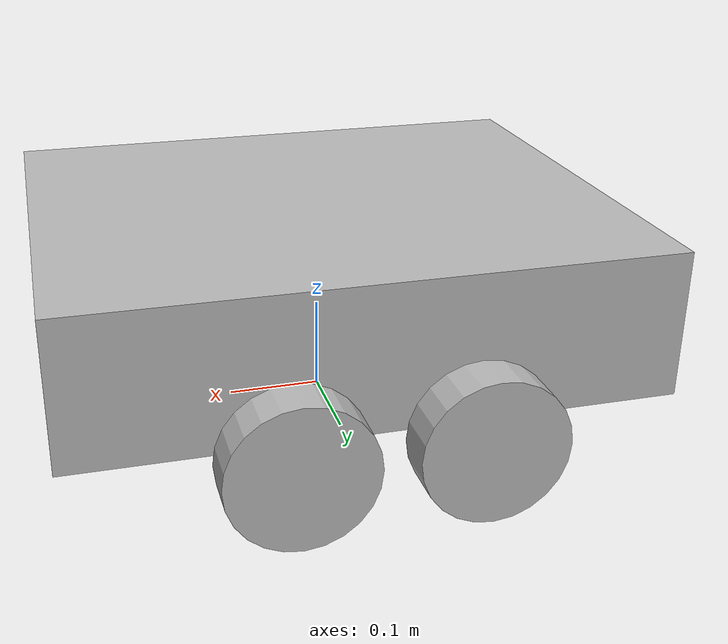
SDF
<?xml version="1.0" ?>
<sdf version="1.6">

<model name="kobra_chassis">
    <link name="chassis">
        <!-- Offset the base by slightly more then half the height of the wheel -->
        <pose>0 0 0.15 0 0 0</pose>
	<inertial>
        <mass>9.5</mass>
	<!-- matrix of inertias of a solid cuboid with mass m, width w,
	     height h, depth d is:
		|m(h^2+d^2)/12		0		0    |
		|	0	m(w^2+d^2)/12		0    |
		|	0		0	m(w^2+h^2)/12|
	-->
        <inertia>
          <ixx>0.21179</ixx>
          <ixy>0.0</ixy>
          <ixz>0.0</ixz>
          <iyy>0.3</iyy>
          <iyz>0.0</iyz>
          <izz>0.478978</izz>
        </inertia>
      </inertial>
        <collision name="collision">
            <geometry>
            <box>
                <!-- Dimensions provided by Nuzoo Robotics -->
                <size>0.6 0.495 0.15</size>
            </box>
            </geometry>
        </collision>
        <visual name="visual">
            <geometry>
            <box>
                <!-- Dimensions provided by Nuzoo Robotics -->
                <size>0.6 0.495 0.15</size>
            </box>
            </geometry>
        </visual>
    </link>

    <link name="right_front_wheel">
        <!-- x y z roll pitch yaw
        roll 90°=1.5707 rad
        -->
        <pose>0.09 -0.2825 0.0725 1.5707 0 0</pose>
	<inertial>
        <mass>1</mass>
	<!-- matrix of inertias of a solid cylinider with mass m,
	     radius r, height h is:
		|m(3*r^2+h^2)/12	0	   0    |
		|	0	m(3*r^2+h^2)/12	   0    |
		|	0		0	m*r^2/2 |
	-->
        <inertia>
          <ixx>0.00148</ixx>
          <ixy>0.0</ixy>
          <ixz>0.0</ixz>
          <iyy>0.00148</iyy>
          <iyz>0.0</iyz>
          <izz>0.002628</izz>
        </inertia>
      </inertial>
        <collision name="collision">
            <geometry>
            <cylinder>
                <radius>0.0725</radius>
                <length>0.045</length>
            </cylinder>
            </geometry>
        </collision>
        <visual name="visual">
            <geometry>
            <cylinder>
                <radius>0.0725</radius>
                <length>0.045</length>
            </cylinder>
            </geometry>
        </visual>
    </link>

    <link name="left_front_wheel">
        <pose>0.09 0.2825 0.0725 1.5707 0 0</pose>
	<inertial>
        <mass>1</mass>
        <inertia>
          <ixx>0.00148</ixx>
          <ixy>0.0</ixy>
          <ixz>0.0</ixz>
          <iyy>0.00148</iyy>
          <iyz>0.0</iyz>
          <izz>0.002628</izz>
        </inertia>
      </inertial>
        <collision name="collision">
            <geometry>
            <cylinder>
                <radius>0.0725</radius>
                <length>0.045</length>
            </cylinder>
            </geometry>
        </collision>
        <visual name="visual">
            <geometry>
            <cylinder>
                <radius>0.0725</radius>
                <length>0.045</length>
            </cylinder>
            </geometry>
        </visual>
    </link>

    <link name="right_rear_wheel">
        <pose>-0.09 -0.2825 0.0725 1.5707 0 0</pose>
	<inertial>
        <mass>1</mass>
        <inertia>
          <ixx>0.00148</ixx>
          <ixy>0.0</ixy>
          <ixz>0.0</ixz>
          <iyy>0.00148</iyy>
          <iyz>0.0</iyz>
          <izz>0.002628</izz>
        </inertia>
      </inertial>
        <collision name="collision">
            <geometry>
            <cylinder>
                <radius>0.0725</radius>
                <length>0.045</length>
            </cylinder>
            </geometry>
        </collision>
        <visual name="visual">
            <geometry>
            <cylinder>
                <radius>0.0725</radius>
                <length>0.045</length>
            </cylinder>
            </geometry>
        </visual>
    </link>

    <link name="left_rear_wheel">
        <pose>-0.09 0.2825 0.0725 1.5707 0 0</pose>
	<inertial>
        <mass>1</mass>
        <inertia>
          <ixx>0.00148</ixx>
          <ixy>0.0</ixy>
          <ixz>0.0</ixz>
          <iyy>0.00148</iyy>
          <iyz>0.0</iyz>
          <izz>0.002628</izz>
        </inertia>
      </inertial>
        <collision name="collision">
            <geometry>
            <cylinder>
                <radius>0.0725</radius>
                <length>0.045</length>
            </cylinder>
            </geometry>
        </collision>
        <visual name="visual">
            <geometry>
            <cylinder>
                <radius>0.0725</radius>
                <length>0.045</length>
            </cylinder>
            </geometry>
        </visual>
    </link>

    <!--                    Joints                       -->

    <joint type="revolute" name="right_front_wheel_joint">
        <pose>0 0 0 0 0 0</pose>
        <child>right_front_wheel</child>
        <parent>chassis</parent>
        <axis>
            <xyz>0 0 1</xyz>
        </axis>
    </joint>
    <joint type="revolute" name="right_rear_wheel_joint">
        <pose>0 0 0 0 0 0</pose>
        <child>right_rear_wheel</child>
        <parent>chassis</parent>
        <axis>
            <xyz>0 0 1</xyz>
        </axis>
    </joint>
    <joint type="revolute" name="left_front_wheel_joint">
        <pose>0 0 0 0 0 0</pose>
        <child>left_front_wheel</child>
        <parent>chassis</parent>
        <axis>
            <xyz>0 0 1</xyz>
        </axis>
    </joint>
    <joint type="revolute" name="left_rear_wheel_joint">
        <pose>0 0 0 0 0 0</pose>
        <child>left_rear_wheel</child>
        <parent>chassis</parent>
        <axis>
            <xyz>0 0 1</xyz>
        </axis>
    </joint>

</model>
</sdf>
